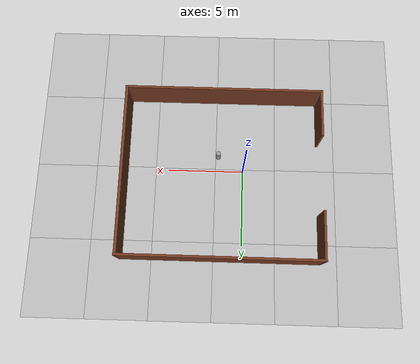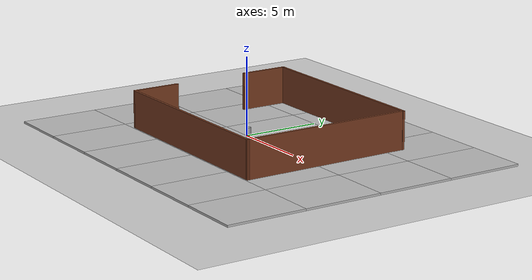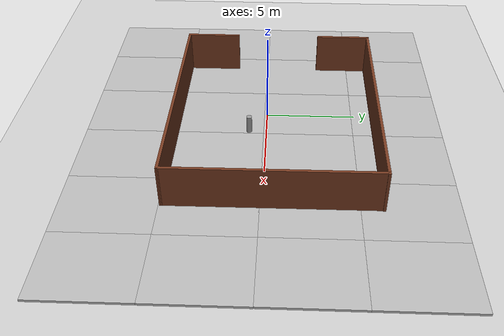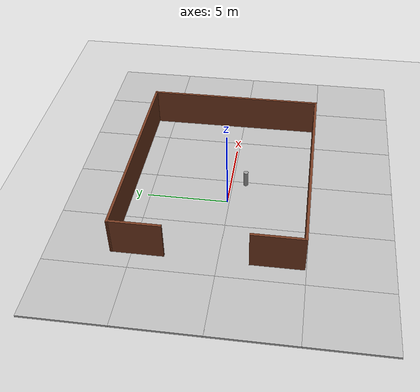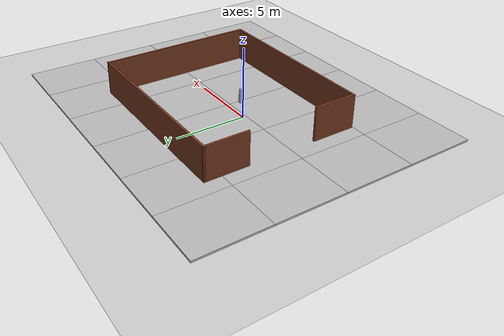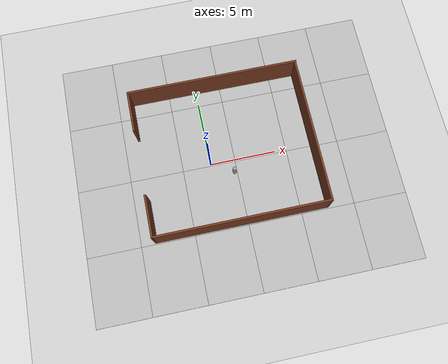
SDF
<sdf version="1.7">
 <world name="default">
  <light name="sun" type="directional">
   <pose>0 0 10 0 -0 0</pose>
   <diffuse>0.8 0.8 0.8 1</diffuse>
   <specular>0.1 0.1 0.1 1</specular>
   <attenuation>
    <range>1000</range>
    <constant>0.9</constant>
    <linear>0.01</linear>
    <quadratic>0.001</quadratic>
   </attenuation>
   <direction>-0.5 0.5 -1</direction>
   <spot><inner_angle>0</inner_angle><outer_angle>0</outer_angle><falloff>0</falloff></spot>
  </light>
  <model name="ground_plane">
   <static>1</static>
   <link name="link">
    <collision name="collision">
     <geometry><plane><normal>0 0 1</normal><size>100 100</size></plane></geometry>
     <surface><friction><ode><mu>100</mu><mu2>50</mu2></ode></friction></surface>
    </collision>
    <visual name="visual">
     <cast_shadows>0</cast_shadows>
     <geometry><plane><normal>0 0 1</normal><size>100 100</size></plane></geometry>
     <material>
      <script><uri>file://media/materials/scripts/gazebo.material</uri><name>Gazebo/Grey</name></script>
     </material>
    </visual>
   </link>
  </model>
  <gravity>0 0 -9.8</gravity>
  <magnetic_field>6e-06 2.3e-05 -4.2e-05</magnetic_field>
  <atmosphere type="adiabatic"/>
  <physics name="default_physics" default="0" type="ode">
   <max_step_size>0.001</max_step_size>
   <real_time_factor>1</real_time_factor>
   <real_time_update_rate>1000</real_time_update_rate>
  </physics>
  <scene><ambient>0.4 0.4 0.4 1</ambient><background>0.7 0.7 0.7 1</background><shadows>1</shadows></scene>
  <spherical_coordinates>
   <surface_model>EARTH_WGS84</surface_model>
   <latitude_deg>0</latitude_deg>
   <longitude_deg>0</longitude_deg>
   <elevation>0</elevation>
   <heading_deg>0</heading_deg>
  </spherical_coordinates>
  <model name="mud_box">
   <static>1</static>
   <link name="link">
    <collision name="collision"><geometry><box><size>8 10 0.2</size></box></geometry></collision>
    <visual name="visual_1">
     <pose>-2 2.5 0 0 -0 0</pose>
     <cast_shadows>0</cast_shadows>
     <geometry><box><size>4 5 0.2</size></box></geometry>
     <material>
      <script>
       <uri>model://mud_box/materials/scripts</uri>
       <uri>model://mud_box/materials/textures</uri>
       <name>vrc/mud</name>
      </script>
     </material>
    </visual>
    <visual name="visual_2">
     <pose>2 2.5 0 0 -0 0</pose>
     <cast_shadows>0</cast_shadows>
     <geometry><box><size>4 5 0.2</size></box></geometry>
     <material>
      <script>
       <uri>model://mud_box/materials/scripts</uri>
       <uri>model://mud_box/materials/textures</uri>
       <name>vrc/mud</name>
      </script>
     </material>
    </visual>
    <visual name="visual_3">
     <pose>2 -2.5 0 0 -0 0</pose>
     <cast_shadows>0</cast_shadows>
     <geometry><box><size>4 5 0.2</size></box></geometry>
     <material>
      <script>
       <uri>model://mud_box/materials/scripts</uri>
       <uri>model://mud_box/materials/textures</uri>
       <name>vrc/mud</name>
      </script>
     </material>
    </visual>
    <visual name="visual_4">
     <pose>-2 -2.5 0 0 -0 0</pose>
     <cast_shadows>0</cast_shadows>
     <geometry><box><size>4 5 0.2</size></box></geometry>
     <material>
      <script>
       <uri>model://mud_box/materials/scripts</uri>
       <uri>model://mud_box/materials/textures</uri>
       <name>vrc/mud</name>
      </script>
     </material>
    </visual>
   </link>
   <pose>-6.12765 4.83622 0 0 -0 0</pose>
  </model>
  <model name="mud_box_0">
   <static>1</static>
   <link name="link">
    <collision name="collision"><geometry><box><size>8 10 0.2</size></box></geometry></collision>
    <visual name="visual_1">
     <pose>-2 2.5 0 0 -0 0</pose>
     <cast_shadows>0</cast_shadows>
     <geometry><box><size>4 5 0.2</size></box></geometry>
     <material>
      <script>
       <uri>model://mud_box/materials/scripts</uri>
       <uri>model://mud_box/materials/textures</uri>
       <name>vrc/mud</name>
      </script>
     </material>
    </visual>
    <visual name="visual_2">
     <pose>2 2.5 0 0 -0 0</pose>
     <cast_shadows>0</cast_shadows>
     <geometry><box><size>4 5 0.2</size></box></geometry>
     <material>
      <script>
       <uri>model://mud_box/materials/scripts</uri>
       <uri>model://mud_box/materials/textures</uri>
       <name>vrc/mud</name>
      </script>
     </material>
    </visual>
    <visual name="visual_3">
     <pose>2 -2.5 0 0 -0 0</pose>
     <cast_shadows>0</cast_shadows>
     <geometry><box><size>4 5 0.2</size></box></geometry>
     <material>
      <script>
       <uri>model://mud_box/materials/scripts</uri>
       <uri>model://mud_box/materials/textures</uri>
       <name>vrc/mud</name>
      </script>
     </material>
    </visual>
    <visual name="visual_4">
     <pose>-2 -2.5 0 0 -0 0</pose>
     <cast_shadows>0</cast_shadows>
     <geometry><box><size>4 5 0.2</size></box></geometry>
     <material>
      <script>
       <uri>model://mud_box/materials/scripts</uri>
       <uri>model://mud_box/materials/textures</uri>
       <name>vrc/mud</name>
      </script>
     </material>
    </visual>
   </link>
   <pose>1.86767 4.83104 0 0 -0 0</pose>
  </model>
  <model name="mud_box_1">
   <static>1</static>
   <link name="link">
    <collision name="collision"><geometry><box><size>8 10 0.2</size></box></geometry></collision>
    <visual name="visual_1">
     <pose>-2 2.5 0 0 -0 0</pose>
     <cast_shadows>0</cast_shadows>
     <geometry><box><size>4 5 0.2</size></box></geometry>
     <material>
      <script>
       <uri>model://mud_box/materials/scripts</uri>
       <uri>model://mud_box/materials/textures</uri>
       <name>vrc/mud</name>
      </script>
     </material>
    </visual>
    <visual name="visual_2">
     <pose>2 2.5 0 0 -0 0</pose>
     <cast_shadows>0</cast_shadows>
     <geometry><box><size>4 5 0.2</size></box></geometry>
     <material>
      <script>
       <uri>model://mud_box/materials/scripts</uri>
       <uri>model://mud_box/materials/textures</uri>
       <name>vrc/mud</name>
      </script>
     </material>
    </visual>
    <visual name="visual_3">
     <pose>2 -2.5 0 0 -0 0</pose>
     <cast_shadows>0</cast_shadows>
     <geometry><box><size>4 5 0.2</size></box></geometry>
     <material>
      <script>
       <uri>model://mud_box/materials/scripts</uri>
       <uri>model://mud_box/materials/textures</uri>
       <name>vrc/mud</name>
      </script>
     </material>
    </visual>
    <visual name="visual_4">
     <pose>-2 -2.5 0 0 -0 0</pose>
     <cast_shadows>0</cast_shadows>
     <geometry><box><size>4 5 0.2</size></box></geometry>
     <material>
      <script>
       <uri>model://mud_box/materials/scripts</uri>
       <uri>model://mud_box/materials/textures</uri>
       <name>vrc/mud</name>
      </script>
     </material>
    </visual>
   </link>
   <pose>-6.12792 -5.13998 0 0 -0 0</pose>
  </model>
  <model name="mud_box_2">
   <static>1</static>
   <link name="link">
    <collision name="collision"><geometry><box><size>8 10 0.2</size></box></geometry></collision>
    <visual name="visual_1">
     <pose>-2 2.5 0 0 -0 0</pose>
     <cast_shadows>0</cast_shadows>
     <geometry><box><size>4 5 0.2</size></box></geometry>
     <material>
      <script>
       <uri>model://mud_box/materials/scripts</uri>
       <uri>model://mud_box/materials/textures</uri>
       <name>vrc/mud</name>
      </script>
     </material>
    </visual>
    <visual name="visual_2">
     <pose>2 2.5 0 0 -0 0</pose>
     <cast_shadows>0</cast_shadows>
     <geometry><box><size>4 5 0.2</size></box></geometry>
     <material>
      <script>
       <uri>model://mud_box/materials/scripts</uri>
       <uri>model://mud_box/materials/textures</uri>
       <name>vrc/mud</name>
      </script>
     </material>
    </visual>
    <visual name="visual_3">
     <pose>2 -2.5 0 0 -0 0</pose>
     <cast_shadows>0</cast_shadows>
     <geometry><box><size>4 5 0.2</size></box></geometry>
     <material>
      <script>
       <uri>model://mud_box/materials/scripts</uri>
       <uri>model://mud_box/materials/textures</uri>
       <name>vrc/mud</name>
      </script>
     </material>
    </visual>
    <visual name="visual_4">
     <pose>-2 -2.5 0 0 -0 0</pose>
     <cast_shadows>0</cast_shadows>
     <geometry><box><size>4 5 0.2</size></box></geometry>
     <material>
      <script>
       <uri>model://mud_box/materials/scripts</uri>
       <uri>model://mud_box/materials/textures</uri>
       <name>vrc/mud</name>
      </script>
     </material>
    </visual>
   </link>
   <pose>1.85975 -5.14192 0 0 -0 0</pose>
  </model>
  <model name="mud_box_0_clone">
   <static>1</static>
   <link name="link">
    <collision name="collision"><geometry><box><size>8 10 0.2</size></box></geometry></collision>
    <visual name="visual_1">
     <pose>-2 2.5 0 0 -0 0</pose>
     <cast_shadows>0</cast_shadows>
     <geometry><box><size>4 5 0.2</size></box></geometry>
     <material>
      <script>
       <uri>model://mud_box/materials/scripts</uri>
       <uri>model://mud_box/materials/textures</uri>
       <name>vrc/mud</name>
      </script>
     </material>
    </visual>
    <visual name="visual_2">
     <pose>2 2.5 0 0 -0 0</pose>
     <cast_shadows>0</cast_shadows>
     <geometry><box><size>4 5 0.2</size></box></geometry>
     <material>
      <script>
       <uri>model://mud_box/materials/scripts</uri>
       <uri>model://mud_box/materials/textures</uri>
       <name>vrc/mud</name>
      </script>
     </material>
    </visual>
    <visual name="visual_3">
     <pose>2 -2.5 0 0 -0 0</pose>
     <cast_shadows>0</cast_shadows>
     <geometry><box><size>4 5 0.2</size></box></geometry>
     <material>
      <script>
       <uri>model://mud_box/materials/scripts</uri>
       <uri>model://mud_box/materials/textures</uri>
       <name>vrc/mud</name>
      </script>
     </material>
    </visual>
    <visual name="visual_4">
     <pose>-2 -2.5 0 0 -0 0</pose>
     <cast_shadows>0</cast_shadows>
     <geometry><box><size>4 5 0.2</size></box></geometry>
     <material>
      <script>
       <uri>model://mud_box/materials/scripts</uri>
       <uri>model://mud_box/materials/textures</uri>
       <name>vrc/mud</name>
      </script>
     </material>
    </visual>
   </link>
   <pose>9.85757 -5.14216 0 0 -0 0</pose>
  </model>
  <model name="mud_box_3">
   <static>1</static>
   <link name="link">
    <collision name="collision"><geometry><box><size>8 10 0.2</size></box></geometry></collision>
    <visual name="visual_1">
     <pose>-2 2.5 0 0 -0 0</pose>
     <cast_shadows>0</cast_shadows>
     <geometry><box><size>4 5 0.2</size></box></geometry>
     <material>
      <script>
       <uri>model://mud_box/materials/scripts</uri>
       <uri>model://mud_box/materials/textures</uri>
       <name>vrc/mud</name>
      </script>
     </material>
    </visual>
    <visual name="visual_2">
     <pose>2 2.5 0 0 -0 0</pose>
     <cast_shadows>0</cast_shadows>
     <geometry><box><size>4 5 0.2</size></box></geometry>
     <material>
      <script>
       <uri>model://mud_box/materials/scripts</uri>
       <uri>model://mud_box/materials/textures</uri>
       <name>vrc/mud</name>
      </script>
     </material>
    </visual>
    <visual name="visual_3">
     <pose>2 -2.5 0 0 -0 0</pose>
     <cast_shadows>0</cast_shadows>
     <geometry><box><size>4 5 0.2</size></box></geometry>
     <material>
      <script>
       <uri>model://mud_box/materials/scripts</uri>
       <uri>model://mud_box/materials/textures</uri>
       <name>vrc/mud</name>
      </script>
     </material>
    </visual>
    <visual name="visual_4">
     <pose>-2 -2.5 0 0 -0 0</pose>
     <cast_shadows>0</cast_shadows>
     <geometry><box><size>4 5 0.2</size></box></geometry>
     <material>
      <script>
       <uri>model://mud_box/materials/scripts</uri>
       <uri>model://mud_box/materials/textures</uri>
       <name>vrc/mud</name>
      </script>
     </material>
    </visual>
   </link>
   <pose>9.84986 4.82173 0 0 -0 0</pose>
  </model>
  <audio><device>default</device></audio>
  <model name="Wooden_Fence">
   <pose>1.41302 0.49998 0 0 -0 0</pose>
   <link name="Wall_5">
    <collision name="Wall_5_Collision">
     <geometry><box><size>3.15 0.15 2.5</size></box></geometry>
     <pose>0 0 1.25 0 -0 0</pose>
    </collision>
    <visual name="Wall_5_Visual">
     <pose>0 0 1.25 0 -0 0</pose>
     <geometry><box><size>3.15 0.15 2.5</size></box></geometry>
     <material>
      <script><uri>file://media/materials/scripts/gazebo.material</uri><name>Gazebo/Grey</name></script>
      <ambient>0.462745 0.227451 0.12549 1</ambient>
     </material>
     <meta><layer>0</layer></meta>
    </visual>
    <pose>-6.41302 -3.99998 0 0 -0 -1.5708</pose>
   </link>
   <link name="Wall_6">
    <collision name="Wall_6_Collision">
     <geometry><box><size>12.976 0.15 2.5</size></box></geometry>
     <pose>0 0 1.25 0 -0 0</pose>
    </collision>
    <visual name="Wall_6_Visual">
     <pose>0 0 1.25 0 -0 0</pose>
     <geometry><box><size>12.976 0.15 2.5</size></box></geometry>
     <material>
      <script><uri>file://media/materials/scripts/gazebo.material</uri><name>Gazebo/Grey</name></script>
      <ambient>0.462745 0.227451 0.12549 1</ambient>
     </material>
     <meta><layer>0</layer></meta>
    </visual>
    <pose>-1.8e-05 -5.49998 0 0 -0 0</pose>
   </link>
   <link name="Wall_7">
    <collision name="Wall_7_Collision">
     <geometry><box><size>11.1254 0.15 2.5</size></box></geometry>
     <pose>0 0 1.25 0 -0 0</pose>
    </collision>
    <visual name="Wall_7_Visual">
     <pose>0 0 1.25 0 -0 0</pose>
     <geometry><box><size>11.1254 0.15 2.5</size></box></geometry>
     <material>
      <script><uri>file://media/materials/scripts/gazebo.material</uri><name>Gazebo/Grey</name></script>
      <ambient>0.462745 0.227451 0.12549 1</ambient>
     </material>
     <meta><layer>0</layer></meta>
    </visual>
    <pose>6.39959 -0.012294 0 0 -0 1.57324</pose>
   </link>
   <link name="Wall_8">
    <collision name="Wall_8_Collision">
     <geometry><box><size>12.9757 0.15 2.5</size></box></geometry>
     <pose>0 0 1.25 0 -0 0</pose>
    </collision>
    <visual name="Wall_8_Visual">
     <pose>0 0 1.25 0 -0 0</pose>
     <geometry><box><size>12.9757 0.15 2.5</size></box></geometry>
     <material>
      <script><uri>file://media/materials/scripts/gazebo.material</uri><name>Gazebo/Grey</name></script>
      <ambient>0.462745 0.227451 0.12549 1</ambient>
     </material>
     <meta><layer>0</layer></meta>
    </visual>
    <pose>-0.000183 5.48771 0 0 -0 3.13967</pose>
   </link>
   <link name="Wall_9">
    <collision name="Wall_9_Collision">
     <geometry><box><size>3.15 0.15 2.5</size></box></geometry>
     <pose>0 0 1.25 0 -0 0</pose>
    </collision>
    <visual name="Wall_9_Visual">
     <pose>0 0 1.25 0 -0 0</pose>
     <geometry><box><size>3.15 0.15 2.5</size></box></geometry>
     <material>
      <script><uri>file://media/materials/scripts/gazebo.material</uri><name>Gazebo/Grey</name></script>
      <ambient>0.462745 0.227451 0.12549 1</ambient>
     </material>
     <meta><layer>0</layer></meta>
    </visual>
    <pose>-6.41302 4.00002 0 0 -0 -1.5708</pose>
   </link>
   <static>1</static>
  </model>
  <model name="unit_cylinder">
   <link name="link">
    <inertial>
     <mass>1</mass>
     <inertia><ixx>0.145833</ixx><ixy>0</ixy><ixz>0</ixz><iyy>0.145833</iyy><iyz>0</iyz><izz>0.125</izz></inertia>
    </inertial>
    <visual name="visual">
     <geometry><cylinder><radius>0.15</radius><length>1</length></cylinder></geometry>
     <material>
      <script><name>Gazebo/Grey</name><uri>file://media/materials/scripts/gazebo.material</uri></script>
      <shader type="pixel"><normal_map>__default__</normal_map></shader>
      <ambient>0.3 0.3 0.3 1</ambient>
      <diffuse>0.7 0.7 0.7 1</diffuse>
      <specular>0.01 0.01 0.01 1</specular>
      <emissive>0 0 0 1</emissive>
     </material>
    </visual>
    <collision name="collision">
     <geometry><cylinder><radius>0.15</radius><length>1</length></cylinder></geometry>
     <surface>
      <friction>
       <ode><mu>1</mu><mu2>1</mu2><fdir1>0 0 0</fdir1><slip1>0</slip1><slip2>0</slip2></ode>
       <torsional>
        <coefficient>1</coefficient>
        <patch_radius>0</patch_radius>
        <surface_radius>0</surface_radius>
        <use_patch_radius>1</use_patch_radius>
        <ode><slip>0</slip></ode>
       </torsional>
      </friction>
      <bounce><restitution_coefficient>0</restitution_coefficient><threshold>1e+06</threshold></bounce>
      <contact>
       <collide_without_contact>0</collide_without_contact>
       <collide_without_contact_bitmask>1</collide_without_contact_bitmask>
       <collide_bitmask>1</collide_bitmask>
       <ode>
        <soft_cfm>0</soft_cfm>
        <soft_erp>0.2</soft_erp>
        <kp>1e+13</kp>
        <kd>1</kd>
        <max_vel>0.01</max_vel>
        <min_depth>0</min_depth>
       </ode>
       <bullet>
        <split_impulse>1</split_impulse>
        <split_impulse_penetration_threshold>-0.01</split_impulse_penetration_threshold>
        <soft_cfm>0</soft_cfm>
        <soft_erp>0.2</soft_erp>
        <kp>1e+13</kp>
        <kd>1</kd>
       </bullet>
      </contact>
     </surface>
    </collision>
   </link>
   <static>0</static>
   <pose>1.67645 -0.970853 0.6 2.5e-05 1.9e-05 5.2e-05</pose>
  </model>
 </world>
</sdf>
